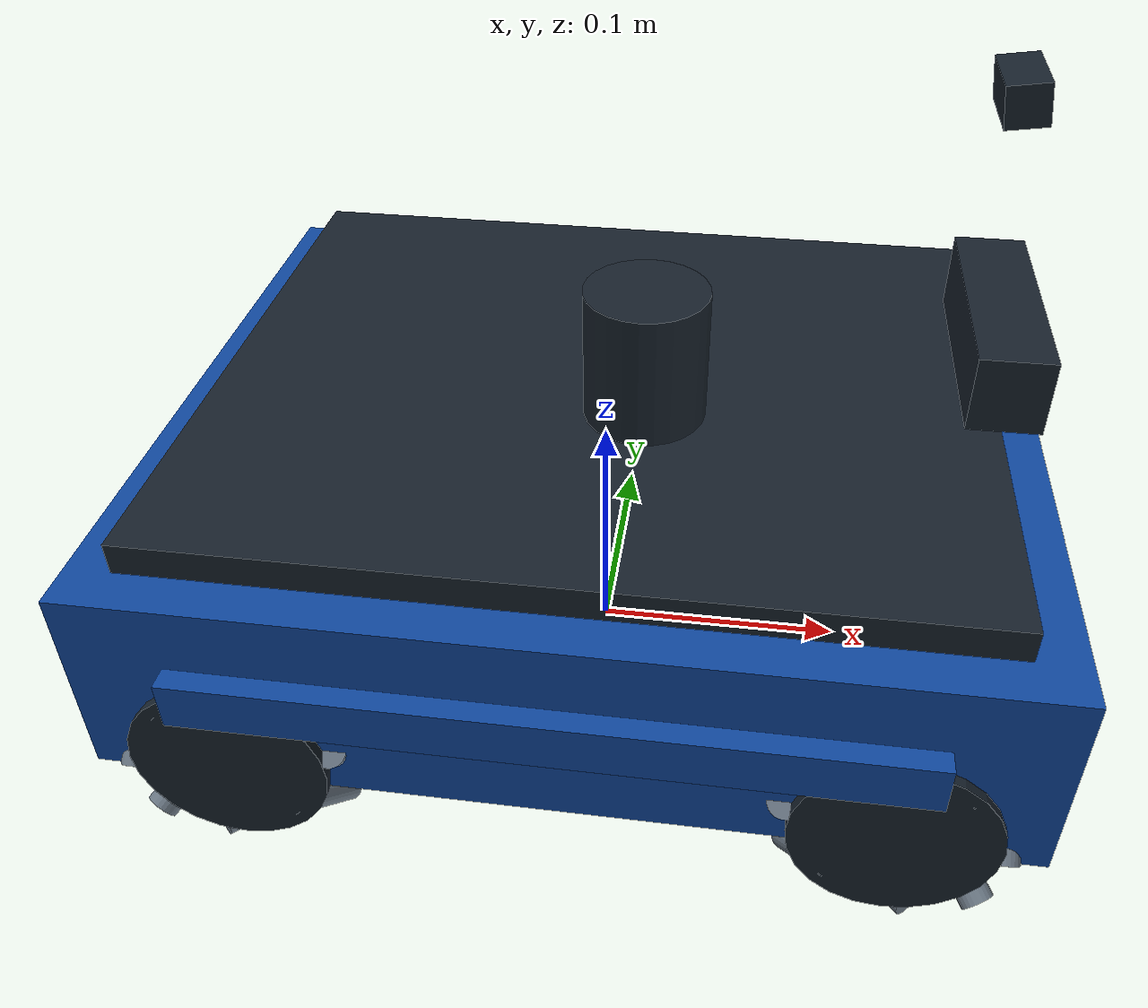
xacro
<?xml version="1.0"?>
<robot name="sq_mecanum_334" xmlns:xacro="http://www.ros.org/wiki/xacro">
  <!-- Envelope from the MO-SERGEANT guide: 334 x 303 x 222 mm, 34 mm chassis clearance. -->
  <!-- Gazebo planar motion is a kinematic approximation of a four-wheel mecanum base. -->
  <material name="sq_body_blue"><color rgba="0.06 0.28 0.62 1"/></material>
  <material name="sq_body_dark"><color rgba="0.09 0.13 0.17 1"/></material>
  <material name="sq_roller"><color rgba="0.42 0.47 0.52 1"/></material>

  <link name="base_footprint"/>
  <joint name="base_footprint_joint" type="fixed">
    <parent link="base_footprint"/>
    <child link="base_link"/>
    <origin xyz="0 0 0.073" rpy="0 0 0"/>
  </joint>
  <link name="base_link">
    <visual>
      <geometry><box size="0.334 0.270 0.078"/></geometry>
      <material name="sq_body_blue"/>
    </visual>
    <visual>
      <origin xyz="0 0 0.049" rpy="0 0 0"/>
      <geometry><box size="0.295 0.245 0.012"/></geometry>
      <material name="sq_body_dark"/>
    </visual>
    <!-- Side guards bring the physical and rendered width to exactly 303 mm. -->
    <visual>
      <origin xyz="0 0.1475 0.014" rpy="0 0 0"/>
      <geometry><box size="0.250 0.008 0.018"/></geometry>
      <material name="sq_body_blue"/>
    </visual>
    <visual>
      <origin xyz="0 -0.1475 0.014" rpy="0 0 0"/>
      <geometry><box size="0.250 0.008 0.018"/></geometry>
      <material name="sq_body_blue"/>
    </visual>
    <collision>
      <geometry><box size="0.334 0.270 0.078"/></geometry>
    </collision>
    <collision>
      <origin xyz="0 0.1475 0.014" rpy="0 0 0"/>
      <geometry><box size="0.250 0.008 0.018"/></geometry>
    </collision>
    <collision>
      <origin xyz="0 -0.1475 0.014" rpy="0 0 0"/>
      <geometry><box size="0.250 0.008 0.018"/></geometry>
    </collision>
    <inertial>
      <mass value="4.20"/>
      <inertia ixx="0.0274" ixy="0" ixz="0" iyy="0.0412" iyz="0" izz="0.0645"/>
    </inertial>
  </link>

  <xacro:macro name="sq_roller_visual" params="x z angle hand">
    <visual>
      <origin xyz="${x} 0 ${z}" rpy="${hand * 0.785398} ${angle} 0"/>
      <geometry><cylinder radius="0.006" length="0.028"/></geometry>
      <material name="sq_roller"/>
    </visual>
  </xacro:macro>
  <xacro:macro name="sq_mecanum_wheel" params="id px py hand">
    <joint name="${id}_joint" type="continuous">
      <parent link="base_link"/>
      <child link="${id}_link"/>
      <origin xyz="${px} ${py} -0.030" rpy="0 0 0"/>
      <axis xyz="0 1 0"/>
      <limit effort="20" velocity="25"/>
      <dynamics damping="0.02" friction="0.0"/>
    </joint>
    <link name="${id}_link">
      <visual>
        <origin xyz="0 0 0" rpy="1.570796 0 0"/>
        <geometry><cylinder radius="0.036" length="0.028"/></geometry>
        <material name="sq_body_dark"/>
      </visual>
      <xacro:sq_roller_visual x="0.037" z="0" angle="0" hand="${hand}"/>
      <xacro:sq_roller_visual x="0.02616" z="0.02616" angle="0.785398" hand="${hand}"/>
      <xacro:sq_roller_visual x="0" z="0.037" angle="1.570796" hand="${hand}"/>
      <xacro:sq_roller_visual x="-0.02616" z="0.02616" angle="2.356194" hand="${hand}"/>
      <xacro:sq_roller_visual x="-0.037" z="0" angle="3.141593" hand="${hand}"/>
      <xacro:sq_roller_visual x="-0.02616" z="-0.02616" angle="3.926991" hand="${hand}"/>
      <xacro:sq_roller_visual x="0" z="-0.037" angle="4.712389" hand="${hand}"/>
      <xacro:sq_roller_visual x="0.02616" z="-0.02616" angle="5.497787" hand="${hand}"/>
      <collision>
        <origin xyz="0 0 0" rpy="1.570796 0 0"/>
        <geometry><cylinder radius="0.043" length="0.030"/></geometry>
      </collision>
      <inertial>
        <mass value="0.25"/>
        <inertia ixx="0.00013" ixy="0" ixz="0" iyy="0.00023" iyz="0" izz="0.00013"/>
      </inertial>
    </link>
    <gazebo reference="${id}_link">
      <mu1>0.02</mu1><mu2>0.02</mu2>
      <kp>100000</kp><kd>1</kd>
    </gazebo>
  </xacro:macro>
  <xacro:sq_mecanum_wheel id="wheel_front_left"  px="0.115"  py="0.125"  hand="1"/>
  <xacro:sq_mecanum_wheel id="wheel_front_right" px="0.115"  py="-0.125" hand="-1"/>
  <xacro:sq_mecanum_wheel id="wheel_rear_left"   px="-0.115" py="0.125"  hand="-1"/>
  <xacro:sq_mecanum_wheel id="wheel_rear_right"  px="-0.115" py="-0.125" hand="1"/>

  <joint name="scan_joint" type="fixed">
    <parent link="base_link"/><child link="base_scan"/>
    <origin xyz="0.025 -0.100 0.129" rpy="0 0 0"/>
  </joint>
  <link name="base_scan">
    <visual><geometry><cylinder radius="0.018" length="0.040"/></geometry>
      <material name="sq_body_dark"/></visual>
  </link>

  <joint name="camera_joint" type="fixed">
    <parent link="base_link"/><child link="camera_link"/>
    <origin xyz="0.142 0 0.086" rpy="0 0 0"/>
  </joint>
  <link name="camera_link">
    <visual><geometry><box size="0.026 0.088 0.028"/></geometry>
      <material name="sq_body_dark"/></visual>
  </link>
  <joint name="camera_rgb_joint" type="fixed">
    <parent link="camera_link"/><child link="camera_rgb_frame"/>
    <origin xyz="0.014 0 0" rpy="0 0 0"/>
  </joint>
  <link name="camera_rgb_frame"/>
  <joint name="camera_rgb_optical_joint" type="fixed">
    <parent link="camera_rgb_frame"/><child link="camera_rgb_optical_frame"/>
    <origin xyz="0 0 0" rpy="-1.570796 0 -1.570796"/>
  </joint>
  <link name="camera_rgb_optical_frame"/>
  <joint name="camera_depth_joint" type="fixed">
    <parent link="camera_link"/><child link="camera_depth_frame"/>
    <origin xyz="0.014 0.04 0" rpy="0 0 0"/>
  </joint>
  <link name="camera_depth_frame"/>
  <joint name="camera_depth_optical_joint" type="fixed">
    <parent link="camera_depth_frame"/><child link="camera_depth_optical_frame"/>
    <origin xyz="0 0 0" rpy="-1.570796 0 -1.570796"/>
  </joint>
  <link name="camera_depth_optical_frame"/>

  <joint name="task_camera_joint" type="fixed">
    <parent link="base_link"/><child link="task_camera_link"/>
    <origin xyz="0.154 0.100 0.138" rpy="0 -0.140 0"/>
  </joint>
  <link name="task_camera_link">
    <visual><geometry><box size="0.018 0.036 0.018"/></geometry>
      <material name="sq_body_dark"/></visual>
  </link>
  <joint name="task_camera_optical_joint" type="fixed">
    <parent link="task_camera_link"/><child link="task_camera_optical_frame"/>
    <origin xyz="0 0 0" rpy="-1.570796 0 -1.570796"/>
  </joint>
  <link name="task_camera_optical_frame"/>

  <gazebo>
    <plugin name="sq_mecanum_planar_drive" filename="libgazebo_ros_planar_move.so">
      <robotNamespace>/</robotNamespace>
      <commandTopic>cmd_vel</commandTopic>
      <odometryTopic>odom</odometryTopic>
      <odometryFrame>odom</odometryFrame>
      <robotBaseFrame>base_footprint</robotBaseFrame>
      <odometryRate>30</odometryRate>
      <cmdTimeout>0.4</cmdTimeout>
    </plugin>
  </gazebo>
  <gazebo reference="base_scan">
    <sensor type="ray" name="sq_lidar_360">
      <always_on>true</always_on><update_rate>5</update_rate>
      <ray><scan><horizontal><samples>360</samples><resolution>1</resolution>
        <min_angle>0</min_angle><max_angle>6.283185</max_angle>
      </horizontal></scan>
      <range><min>0.12</min><max>3.5</max><resolution>0.015</resolution></range></ray>
      <plugin name="sq_lidar_ros" filename="libgazebo_ros_laser.so">
        <topicName>scan</topicName><frameName>base_scan</frameName>
      </plugin>
    </sensor>
  </gazebo>
  <gazebo reference="camera_rgb_frame">
    <sensor type="depth" name="sq_rgbd_camera">
      <always_on>true</always_on>
      <camera><horizontal_fov>1.3439</horizontal_fov>
        <image><width>1280</width><height>720</height><format>R8G8B8</format></image>
        <depth_camera/>
        <clip><near>0.03</near><far>10.0</far></clip>
      </camera>
      <plugin name="sq_rgbd_ros" filename="libgazebo_ros_openni_kinect.so">
        <alwaysOn>true</alwaysOn><updateRate>20.0</updateRate>
        <cameraName>camera</cameraName><frameName>camera_rgb_optical_frame</frameName>
        <imageTopicName>rgb/image_raw</imageTopicName>
        <depthImageTopicName>depth/image_raw</depthImageTopicName>
        <pointCloudTopicName>depth/points</pointCloudTopicName>
        <cameraInfoTopicName>rgb/camera_info</cameraInfoTopicName>
        <depthImageCameraInfoTopicName>depth/camera_info</depthImageCameraInfoTopicName>
        <pointCloudCutoff>0.4</pointCloudCutoff>
      </plugin>
    </sensor>
  </gazebo>
  <gazebo reference="task_camera_link">
    <sensor type="camera" name="sq_task_monocular">
      <always_on>true</always_on>
      <camera><horizontal_fov>2.44346</horizontal_fov>
        <image><width>1280</width><height>720</height><format>R8G8B8</format></image>
        <clip><near>0.03</near><far>10.0</far></clip>
      </camera>
      <plugin name="sq_task_monocular_ros" filename="libgazebo_ros_camera.so">
        <alwaysOn>true</alwaysOn><updateRate>10.0</updateRate>
        <cameraName>task_camera</cameraName><frameName>task_camera_optical_frame</frameName>
        <imageTopicName>image_raw</imageTopicName>
        <cameraInfoTopicName>camera_info</cameraInfoTopicName>
      </plugin>
    </sensor>
  </gazebo>
</robot>
